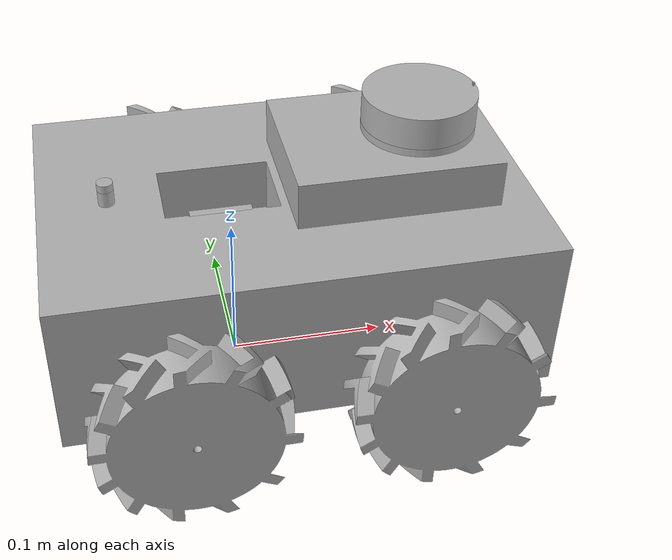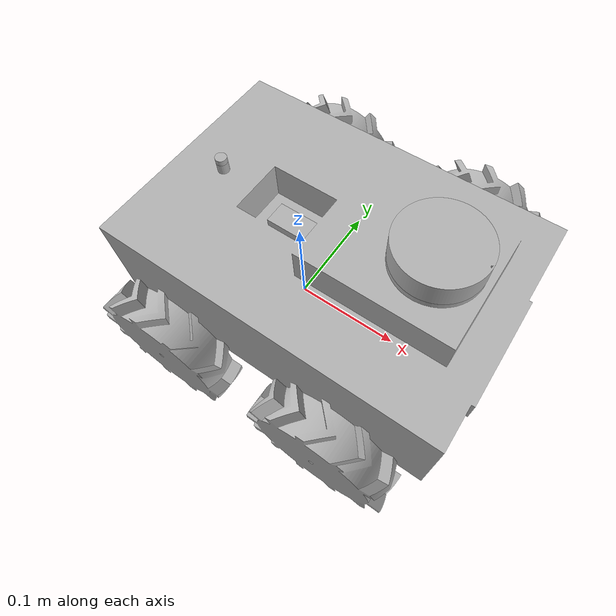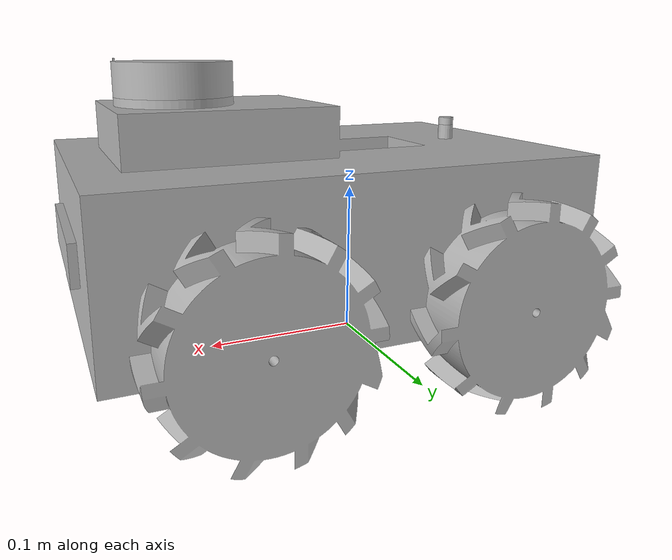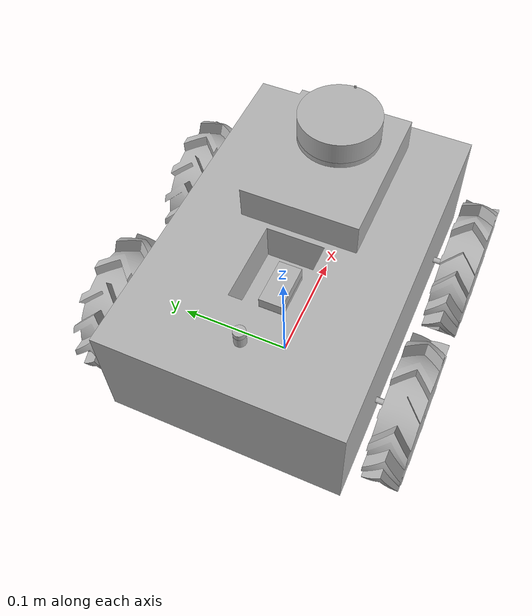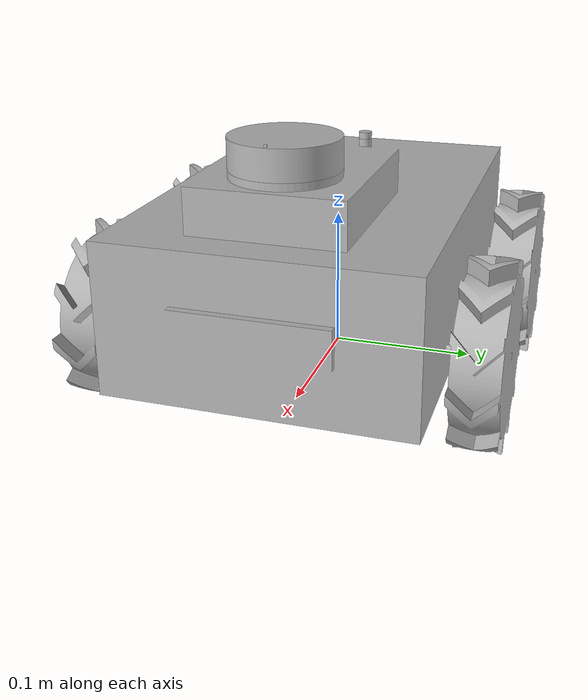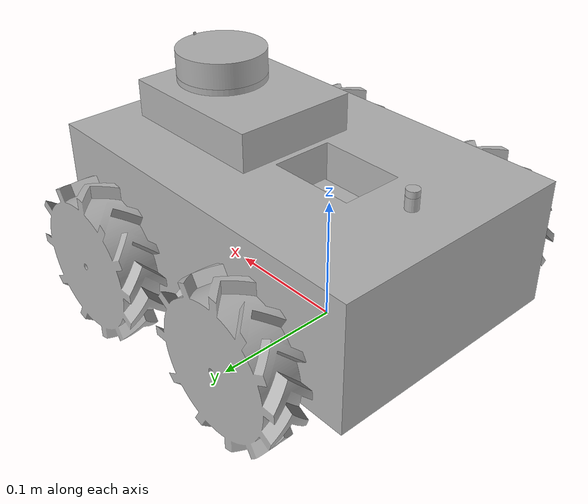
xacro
<?xml version="1.0" ?>
<robot name="bal_robot_urdf" xmlns:xacro="http://www.ros.org/wiki/xacro">

<xacro:include filename="$(find bal_robot_urdf_description)/urdf/materials.xacro" />
<xacro:include filename="$(find bal_robot_urdf_description)/urdf/bal_robot_urdf.trans" />
<xacro:include filename="$(find bal_robot_urdf_description)/urdf/bal_robot_urdf.gazebo" />
<xacro:include filename="$(find bal_robot_urdf_description)/urdf/plugins_urdf.gazebo" />
<xacro:include filename="$(find bal_robot_urdf_description)/urdf/gazebo_control.xacro" />
<link name="base_link">
  <inertial>
    <origin xyz="0.037767664605411484 0.0012253431896488407 0.08327847794759455" rpy="0 0 0"/>
    <mass value="6.667201834536198"/>
    <inertia ixx="0.028451" iyy="0.056744" izz="0.071354" ixy="-0.0" iyz="0.0" ixz="-0.001806"/>
  </inertial>
  <visual>
    <origin xyz="0 0 0" rpy="0 0 0"/>
    <geometry>
      <mesh filename="file://$(find bal_robot_urdf_description)/meshes/base_link.stl" scale="0.001 0.001 0.001"/>
    </geometry>
    <material name="silver"/>
  </visual>
  <collision>
    <origin xyz="0 0 0" rpy="0 0 0"/>
    <geometry>
      <mesh filename="file://$(find bal_robot_urdf_description)/meshes/base_link.stl" scale="0.001 0.001 0.001"/>
    </geometry>
  </collision>
</link>

<link name="lidar_1">
  <inertial>
    <origin xyz="1.44853377330445e-06 2.7616170642256674e-07 0.010000470080404444" rpy="0 0 0"/>
    <mass value="0.6042382071025928"/>
    <inertia ixx="0.000205" iyy="0.000205" izz="0.00037" ixy="-0.0" iyz="-0.0" ixz="-0.0"/>
  </inertial>
  <visual>
    <origin xyz="-0.117737 -0.001226 -0.164764" rpy="0 0 0"/>
    <geometry>
      <mesh filename="file://$(find bal_robot_urdf_description)/meshes/lidar_1.stl" scale="0.001 0.001 0.001"/>
    </geometry>
    <material name="silver"/>
  </visual>
  <collision>
    <origin xyz="-0.117737 -0.001226 -0.164764" rpy="0 0 0"/>
    <geometry>
      <mesh filename="file://$(find bal_robot_urdf_description)/meshes/lidar_1.stl" scale="0.001 0.001 0.001"/>
    </geometry>
  </collision>
</link>

<link name="realsence_1">
  <inertial>
    <origin xyz="0.004999707663906422 2.761617057150164e-07 -1.0024462618329899e-07" rpy="0 0 0"/>
    <mass value="0.08242500245645643"/>
    <inertia ixx="3.5e-05" iyy="2e-06" izz="3.4e-05" ixy="-0.0" iyz="-0.0" ixz="0.0"/>
  </inertial>
  <visual>
    <origin xyz="-0.387737 -0.001226 -0.082264" rpy="0 0 0"/>
    <geometry>
      <mesh filename="file://$(find bal_robot_urdf_description)/meshes/realsence_1.stl" scale="0.001 0.001 0.001"/>
    </geometry>
    <material name="silver"/>
  </visual>
  <collision>
    <origin xyz="-0.387737 -0.001226 -0.082264" rpy="0 0 0"/>
    <geometry>
      <mesh filename="file://$(find bal_robot_urdf_description)/meshes/realsence_1.stl" scale="0.001 0.001 0.001"/>
    </geometry>
  </collision>
</link>

<link name="rfwheel_1">
  <inertial>
    <origin xyz="-0.0004889140025854805 -0.014999723838293719 0.00011426195402471084" rpy="0 0 0"/>
    <mass value="2.044817023447539"/>
    <inertia ixx="0.001605" iyy="0.002914" izz="0.001615" ixy="-0.0" iyz="-0.0" ixz="2e-06"/>
  </inertial>
  <visual>
    <origin xyz="-0.107737 0.108774 -0.054764" rpy="0 0 0"/>
    <geometry>
      <mesh filename="file://$(find bal_robot_urdf_description)/meshes/rfwheel_1.stl" scale="0.001 0.001 0.001"/>
    </geometry>
    <material name="silver"/>
  </visual>
  <collision>
    <origin xyz="-0.107737 0.108774 -0.054764" rpy="0 0 0"/>
    <geometry>
      <mesh filename="file://$(find bal_robot_urdf_description)/meshes/rfwheel_1.stl" scale="0.001 0.001 0.001"/>
    </geometry>
  </collision>
</link>

<link name="rbwheel_1">
  <inertial>
    <origin xyz="-0.0004889140025840233 -0.014999723838292706 0.00011426195402416961" rpy="0 0 0"/>
    <mass value="2.0448170234475396"/>
    <inertia ixx="0.001605" iyy="0.002914" izz="0.001615" ixy="0.0" iyz="-0.0" ixz="2e-06"/>
  </inertial>
  <visual>
    <origin xyz="0.042263 0.108774 -0.054764" rpy="0 0 0"/>
    <geometry>
      <mesh filename="file://$(find bal_robot_urdf_description)/meshes/rbwheel_1.stl" scale="0.001 0.001 0.001"/>
    </geometry>
    <material name="silver"/>
  </visual>
  <collision>
    <origin xyz="0.042263 0.108774 -0.054764" rpy="0 0 0"/>
    <geometry>
      <mesh filename="file://$(find bal_robot_urdf_description)/meshes/rbwheel_1.stl" scale="0.001 0.001 0.001"/>
    </geometry>
  </collision>
</link>

<link name="lfwheel_1">
  <inertial>
    <origin xyz="-0.0004889140025847172 0.01500027616170617 0.00011426195402349654" rpy="0 0 0"/>
    <mass value="2.044817023447539"/>
    <inertia ixx="0.001605" iyy="0.002914" izz="0.001615" ixy="0.0" iyz="-0.0" ixz="2e-06"/>
  </inertial>
  <visual>
    <origin xyz="-0.107737 -0.111226 -0.054764" rpy="0 0 0"/>
    <geometry>
      <mesh filename="file://$(find bal_robot_urdf_description)/meshes/lfwheel_1.stl" scale="0.001 0.001 0.001"/>
    </geometry>
    <material name="silver"/>
  </visual>
  <collision>
    <origin xyz="-0.107737 -0.111226 -0.054764" rpy="0 0 0"/>
    <geometry>
      <mesh filename="file://$(find bal_robot_urdf_description)/meshes/lfwheel_1.stl" scale="0.001 0.001 0.001"/>
    </geometry>
  </collision>
</link>

<link name="lbwheel_1">
  <inertial>
    <origin xyz="-0.0004889140025833849 0.015000276161707196 0.00011426195402289979" rpy="0 0 0"/>
    <mass value="2.0448170234475396"/>
    <inertia ixx="0.001605" iyy="0.002914" izz="0.001615" ixy="0.0" iyz="-0.0" ixz="2e-06"/>
  </inertial>
  <visual>
    <origin xyz="0.042263 -0.111226 -0.054764" rpy="0 0 0"/>
    <geometry>
      <mesh filename="file://$(find bal_robot_urdf_description)/meshes/lbwheel_1.stl" scale="0.001 0.001 0.001"/>
    </geometry>
    <material name="silver"/>
  </visual>
  <collision>
    <origin xyz="0.042263 -0.111226 -0.054764" rpy="0 0 0"/>
    <geometry>
      <mesh filename="file://$(find bal_robot_urdf_description)/meshes/lbwheel_1.stl" scale="0.001 0.001 0.001"/>
    </geometry>
  </collision>
</link>

<link name="imu_1">
  <inertial>
    <origin xyz="8.556984261789968e-10 2.420403805189785e-12 0.004999898451521614" rpy="0 0 0"/>
    <mass value="0.06280000187158614"/>
    <inertia ixx="3e-06" iyy="9e-06" izz="1e-05" ixy="0.0" iyz="-0.0" ixz="-0.0"/>
  </inertial>
  <visual>
    <origin xyz="0.005 -0.0 -0.099764" rpy="0 0 0"/>
    <geometry>
      <mesh filename="file://$(find bal_robot_urdf_description)/meshes/imu_1.stl" scale="0.001 0.001 0.001"/>
    </geometry>
    <material name="silver"/>
  </visual>
  <collision>
    <origin xyz="0.005 -0.0 -0.099764" rpy="0 0 0"/>
    <geometry>
      <mesh filename="file://$(find bal_robot_urdf_description)/meshes/imu_1.stl" scale="0.001 0.001 0.001"/>
    </geometry>
  </collision>
</link>

<link name="gps_1">
  <inertial>
    <origin xyz="9.296814013071142e-10 2.4204614829476862e-12 0.0024998984515221534" rpy="0 0 0"/>
    <mass value="0.003082687791335116"/>
    <inertia ixx="0.0" iyy="0.0" izz="0.0" ixy="0.0" iyz="-0.0" ixz="-0.0"/>
  </inertial>
  <visual>
    <origin xyz="0.075 -0.0 -0.139764" rpy="0 0 0"/>
    <geometry>
      <mesh filename="file://$(find bal_robot_urdf_description)/meshes/gps_1.stl" scale="0.001 0.001 0.001"/>
    </geometry>
    <material name="silver"/>
  </visual>
  <collision>
    <origin xyz="0.075 -0.0 -0.139764" rpy="0 0 0"/>
    <geometry>
      <mesh filename="file://$(find bal_robot_urdf_description)/meshes/gps_1.stl" scale="0.001 0.001 0.001"/>
    </geometry>
  </collision>
</link>

<link name="realsence_1_optical"> </link>

<joint name="Rigid 2" type="fixed">
  <origin xyz="0.117737 0.001226 0.164764" rpy="0 0 0"/>
  <parent link="base_link"/>
  <child link="lidar_1"/>
</joint>

<joint name="Rigid 3" type="fixed">
  <origin xyz="0.187737 0.001226 0.082264" rpy="0 0 0"/>
  <parent link="base_link"/>
  <child link="realsence_1"/>
</joint>

<joint name="Rigid 3 optical" type="fixed">
  <origin xyz="0.187737 0.001226 0.082264" rpy="${-pi/2} 0 ${-pi/2}"/>
  <parent link="base_link"/>
  <child link="realsence_1_optical"/>
</joint>

<joint name="Revolute 4" type="continuous">
  <origin xyz="0.107737 -0.108774 0.054764" rpy="0 0 0"/>
  <parent link="base_link"/>
  <child link="rfwheel_1"/>
  <axis xyz="-0.0 1.0 -0.0"/>
</joint>

<joint name="Revolute 5" type="continuous">
  <origin xyz="-0.042263 -0.108774 0.054764" rpy="0 0 0"/>
  <parent link="base_link"/>
  <child link="rbwheel_1"/>
  <axis xyz="-0.0 1.0 -0.0"/>
</joint>

<joint name="Revolute 6" type="continuous">
  <origin xyz="0.107737 0.111226 0.054764" rpy="0 0 0"/>
  <parent link="base_link"/>
  <child link="lfwheel_1"/>
  <axis xyz="0.0 1.0 -0.0"/>
</joint>

<joint name="Revolute 7" type="continuous">
  <origin xyz="-0.042263 0.111226 0.054764" rpy="0 0 0"/>
  <parent link="base_link"/>
  <child link="lbwheel_1"/>
  <axis xyz="0.0 1.0 -0.0"/>
</joint>

<joint name="Rigid 9" type="fixed">
  <origin xyz="-0.005 0.0 0.099764" rpy="0 0 0"/>
  <parent link="base_link"/>
  <child link="imu_1"/>
</joint>

<joint name="Rigid 10" type="fixed">
  <origin xyz="-0.075 0.0 0.139764" rpy="0 0 0"/>
  <parent link="base_link"/>
  <child link="gps_1"/>
</joint>

<joint name="base_footprint_joint" type="fixed">
  <origin xyz="0 0 0" rpy="0 0 0"/>
  <parent link="base_link"/>
  <child link="base_footprint"/>
</joint>

<link name="base_footprint">
</link>

</robot>

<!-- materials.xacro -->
<robot name="bal_robot_urdf" xmlns:xacro="http://www.ros.org/wiki/xacro" >

<material name="silver">
  <color rgba="0.700 0.700 0.700 1.000"/>
</material>

</robot>

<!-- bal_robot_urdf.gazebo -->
<robot name="bal_robot_urdf" xmlns:xacro="http://www.ros.org/wiki/xacro" >

<xacro:property name="body_color" value="Gazebo/Silver" />

<gazebo>
  <plugin name="control" filename="libgazebo_ros_control.so"/>
</gazebo>
<gazebo reference="base_link">
  <material>${body_color}</material>
  <mu1>0.2</mu1>
  <mu2>0.2</mu2>
  <self_collide>true</self_collide>
  <gravity>true</gravity>
</gazebo>

<gazebo reference="lidar_1">
  <material>${body_color}</material>
  <mu1>0.2</mu1>
  <mu2>0.2</mu2>
  <self_collide>true</self_collide>
</gazebo>

<gazebo reference="realsence_1">
  <material>${body_color}</material>
  <mu1>0.2</mu1>
  <mu2>0.2</mu2>
  <self_collide>true</self_collide>
</gazebo>

<gazebo reference="rfwheel_1">
  <material>${body_color}</material>
  <mu1>0.2</mu1>
  <mu2>0.2</mu2>
  <self_collide>true</self_collide>
</gazebo>

<gazebo reference="rbwheel_1">
  <material>${body_color}</material>
  <mu1>0.2</mu1>
  <mu2>0.2</mu2>
  <self_collide>true</self_collide>
</gazebo>

<gazebo reference="lfwheel_1">
  <material>${body_color}</material>
  <mu1>0.2</mu1>
  <mu2>0.2</mu2>
  <self_collide>true</self_collide>
</gazebo>

<gazebo reference="lbwheel_1">
  <material>${body_color}</material>
  <mu1>0.2</mu1>
  <mu2>0.2</mu2>
  <self_collide>true</self_collide>
</gazebo>

<gazebo reference="imu_1">
  <material>${body_color}</material>
  <mu1>0.2</mu1>
  <mu2>0.2</mu2>
  <self_collide>true</self_collide>
</gazebo>

<gazebo reference="gps_1">
  <material>${body_color}</material>
  <mu1>0.2</mu1>
  <mu2>0.2</mu2>
  <self_collide>true</self_collide>
</gazebo>

</robot>
